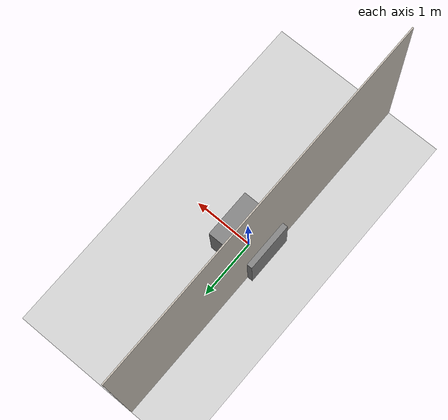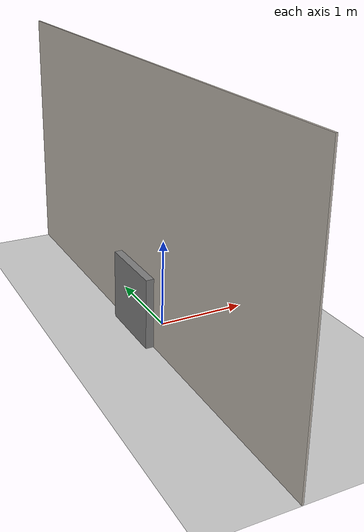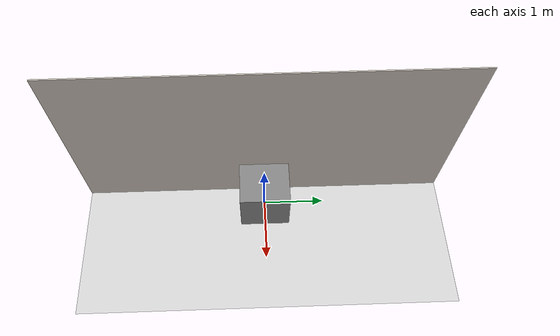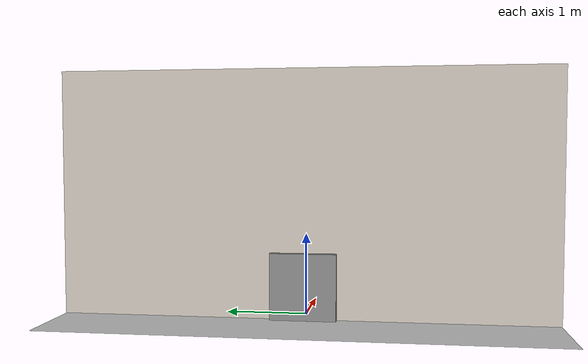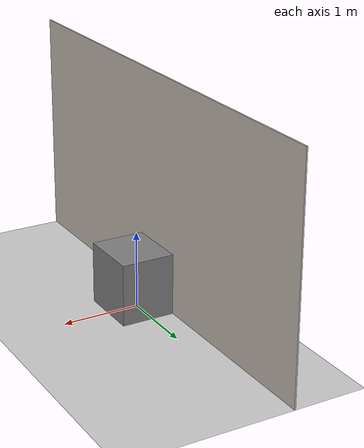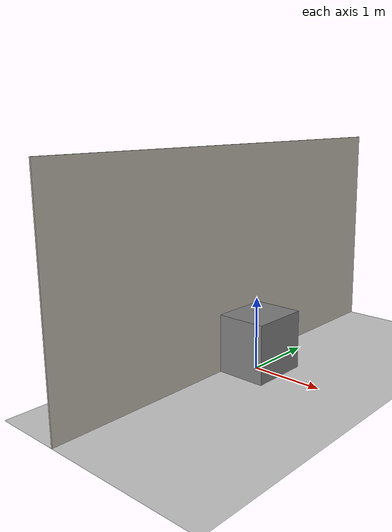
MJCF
<mujoco model="table_arena">
  <asset>
    <texture builtin="gradient" height="256" rgb1=".9 .9 1." rgb2=".2 .3 .4" type="skybox" width="256"/>
    <texture file="../textures/light-gray-plaster.png" type="2d" name="texplane"/>
    <material name="floorplane" reflectance="0.01" shininess="0.0" specular="0.0" texrepeat="2 2" texture="texplane" texuniform="true"/>
    <!-- ceramic table texture and material-->
    <texture file="../textures/gray_melamine.png" type="cube" name="tex-table"/>
    <material name="table_wood" reflectance="0.0" shininess="0.0" specular="0.2" texrepeat="1 1" texture="tex-table" />
    <!-- steel legs -->
    <texture file="../textures/steel-brushed.png" type="cube" name="tex-steel-brushed"/>
    <material name="table_legs_metal" reflectance="0.8" shininess="0.8" texrepeat="1 1" texture="tex-steel-brushed" />
    <!-- plaster walls -->
    <texture file="../textures/navy-oxford.png" type="2d" name="tex-navy-oxford"/>
    <material name="walls_mat" reflectance="0.0" shininess="0.1" specular="0.1" texrepeat="3 3" texture="tex-navy-oxford" texuniform="true" />
    <!-- added table texture and material for domain randomization -->
    <texture  name="textable" builtin="flat" height="512" width="512" rgb1="0.5 0.5 0.5" rgb2="0.5 0.5 0.5"/>
    <material name="table_mat" texture="textable" />

  </asset>
  <worldbody>
    <!-- Floor -->
    <geom condim="3" group="1" material="floorplane" name="floor" pos="0 0 0" size="3 3 .125" type="plane"/>
    <!-- Walls (visual only) -->
    <geom pos="-0.3 0 1.5" quat="0.5 0.5 0.5 0.5" size="3 1.5 0.01" type="box" conaffinity="0" contype="0" group="1" name="wall_rear_visual" material="walls_mat"/>
    <geom pos="-0.3 0 1.5" quat="0.5 0.5 -0.5 -0.5" size="3 1.5 0.01" type="box" conaffinity="0" contype="0" group="1" name="wall_front_visual" material="walls_mat"/>
    <!-- Table body -->
    <body name="table" pos="0 0 0.4">
      <geom pos="0 0 0" size="0.4 0.4 0.4" type="box" group="0" name="table_collision" friction="1 0.005 0.0001"/>
      <geom pos="0 0 0" size="0.4 0.4 0.4" type="box" conaffinity="0" contype="0" group="1" name="table_visual"  rgba='0.82745098 0.82745098 0.82745098 1'/>
      <site pos="0 0 0.4" name="table_top" size="0.001 0.001 0.001" rgba="0 0 0 0"/>
      <!-- Legs (visual only) -->
      <geom pos="0 0 0" size="0.05 0.1" type="cylinder" conaffinity="0" contype="0" group="1" name="table_leg1_visual" material="table_legs_metal"/>
      <geom pos="0 0 0" size="0.05 0.1" type="cylinder" conaffinity="0" contype="0" group="1" name="table_leg2_visual" material="table_legs_metal"/>
      <geom pos="0 0 0" size="0.05 0.1" type="cylinder" conaffinity="0" contype="0" group="1" name="table_leg3_visual" material="table_legs_metal"/>
      <geom pos="0 0 0" size="0.05 0.1" type="cylinder" conaffinity="0" contype="0" group="1" name="table_leg4_visual" material="table_legs_metal"/>
    </body>
    <light pos="1.0 1.0 1.5" dir="-0.2 -0.2 -1" specular="0.3 0.3 0.3" directional="true" castshadow="false"/>
    <!-- front view -->
    <camera mode="fixed" name="frontview" pos="1.15 0 1.5" quat="0.6364587 0.3076895 0.3074446 0.6369657"/>
    <!-- bird view -->
    <camera mode="fixed" name="birdview" pos="0.4 0 3.0" quat="0.7071 0 0 0.7071"/>
    <!-- agent view -->
    <camera mode="fixed" name="agentview" pos="1.5 0 2" quat="0.6510291 0.27547 0.2752507 0.6515477"/>
    <!-- side view -->
    <camera mode="fixed" name="sideview" pos="-0.05651774593317116 1.2761224129427358 1.4879572214102434" quat="0.009905065491771751 0.006877963156909582 0.5912228352893879 0.806418094001364" />

  </worldbody>
</mujoco>
